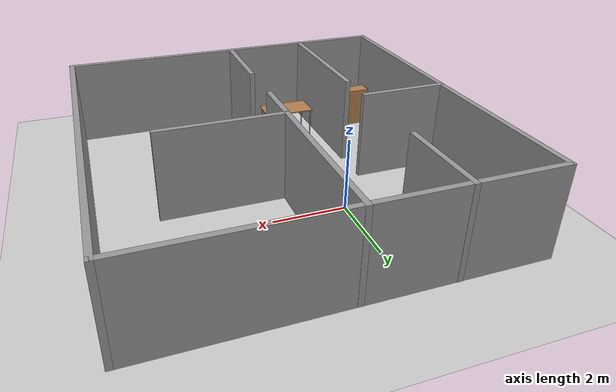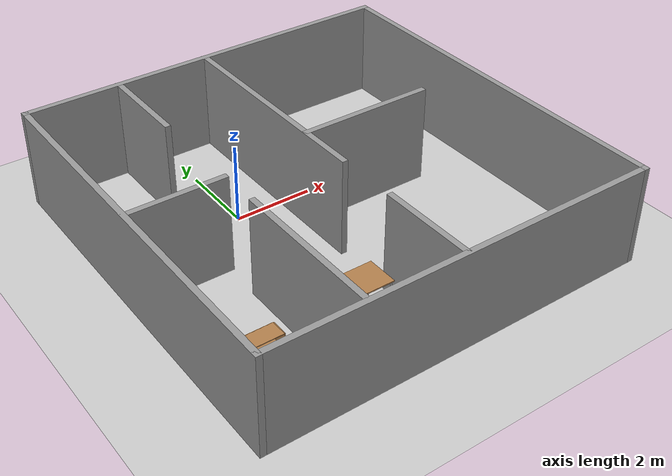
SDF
<sdf version="1.7">
 <world name="default">
  <light name="sun" type="directional">
   <pose>0 0 10 0 -0 0</pose>
   <diffuse>0.8 0.8 0.8 1</diffuse>
   <specular>0.2 0.2 0.2 1</specular>
   <attenuation>
    <range>1000</range>
    <constant>0.9</constant>
    <linear>0.01</linear>
    <quadratic>0.001</quadratic>
   </attenuation>
   <direction>-0.5 0.1 -0.9</direction>
   <spot><inner_angle>0</inner_angle><outer_angle>0</outer_angle><falloff>0</falloff></spot>
  </light>
  <model name="ground_plane">
   <static>1</static>
   <link name="link">
    <collision name="collision">
     <geometry><plane><normal>0 0 1</normal><size>100 100</size></plane></geometry>
     <surface>
      <contact><collide_bitmask>65535</collide_bitmask></contact>
      <friction><ode><mu>100</mu><mu2>50</mu2></ode></friction>
     </surface>
    </collision>
    <visual name="visual">
     <cast_shadows>0</cast_shadows>
     <geometry><plane><normal>0 0 1</normal><size>100 100</size></plane></geometry>
     <material>
      <script><uri>file://media/materials/scripts/gazebo.material</uri><name>Gazebo/Grey</name></script>
     </material>
    </visual>
   </link>
  </model>
  <gravity>0 0 -9.8</gravity>
  <magnetic_field>6e-06 2.3e-05 -4.2e-05</magnetic_field>
  <atmosphere type="adiabatic"/>
  <physics type="ode">
   <max_step_size>0.001</max_step_size>
   <real_time_factor>1</real_time_factor>
   <real_time_update_rate>1000</real_time_update_rate>
  </physics>
  <scene><ambient>0.4 0.4 0.4 1</ambient><background>0.7 0.7 0.7 1</background><shadows>1</shadows></scene>
  <spherical_coordinates>
   <surface_model>EARTH_WGS84</surface_model>
   <latitude_deg>0</latitude_deg>
   <longitude_deg>0</longitude_deg>
   <elevation>0</elevation>
   <heading_deg>0</heading_deg>
  </spherical_coordinates>
  <model name="room_with_walls_10x10">
   <pose>1.49895 -1.53115 0 0 -0 0</pose>
   <link name="Wall_1">
    <collision name="Wall_1_Collision">
     <geometry><box><size>10 0.15 2.5</size></box></geometry>
     <pose>0 0 1.25 0 -0 0</pose>
    </collision>
    <visual name="Wall_1_Visual">
     <pose>0 0 1.25 0 -0 0</pose>
     <geometry><box><size>10 0.15 2.5</size></box></geometry>
     <material>
      <script><uri>file://media/materials/scripts/gazebo.material</uri><name>Gazebo/Grey</name></script>
      <ambient>1 1 1 1</ambient>
     </material>
     <meta><layer>0</layer></meta>
    </visual>
    <pose>-0.119159 -4.92736 0 0 -0 0</pose>
   </link>
   <link name="Wall_11">
    <collision name="Wall_11_Collision">
     <geometry><box><size>2.5 0.15 2.5</size></box></geometry>
     <pose>0 0 1.25 0 -0 0</pose>
    </collision>
    <visual name="Wall_11_Visual">
     <pose>0 0 1.25 0 -0 0</pose>
     <geometry><box><size>2.5 0.15 2.5</size></box></geometry>
     <material>
      <script><uri>file://media/materials/scripts/gazebo.material</uri><name>Gazebo/Grey</name></script>
      <ambient>1 1 1 1</ambient>
     </material>
     <meta><layer>0</layer></meta>
    </visual>
    <pose>-2.64666 3.75236 0 0 -0 -1.5708</pose>
   </link>
   <link name="Wall_16">
    <collision name="Wall_16_Collision">
     <geometry><box><size>2.5 0.15 2.5</size></box></geometry>
     <pose>0 0 1.25 0 -0 0</pose>
    </collision>
    <visual name="Wall_16_Visual">
     <pose>0 0 1.25 0 -0 0</pose>
     <geometry><box><size>2.5 0.15 2.5</size></box></geometry>
     <material>
      <script><uri>file://media/materials/scripts/gazebo.material</uri><name>Gazebo/Grey</name></script>
      <ambient>1 1 1 1</ambient>
     </material>
     <meta><layer>0</layer></meta>
    </visual>
    <pose>-3.84066 0.028362 0 0 -0 0</pose>
   </link>
   <link name="Wall_18">
    <collision name="Wall_18_Collision">
     <geometry><box><size>4 0.15 2.5</size></box></geometry>
     <pose>0 0 1.25 0 -0 0</pose>
    </collision>
    <visual name="Wall_18_Visual">
     <pose>0 0 1.25 0 -0 0</pose>
     <geometry><box><size>4 0.15 2.5</size></box></geometry>
     <material>
      <script><uri>file://media/materials/scripts/gazebo.material</uri><name>Gazebo/Grey</name></script>
      <ambient>1 1 1 1</ambient>
     </material>
     <meta><layer>0</layer></meta>
    </visual>
    <pose>-2.63516 -2.99164 0 0 -0 1.5708</pose>
   </link>
   <link name="Wall_2">
    <collision name="Wall_2_Collision">
     <geometry><box><size>10 0.15 2.5</size></box></geometry>
     <pose>0 0 1.25 0 -0 0</pose>
    </collision>
    <visual name="Wall_2_Visual">
     <pose>0 0 1.25 0 -0 0</pose>
     <geometry><box><size>10 0.15 2.5</size></box></geometry>
     <material>
      <script><uri>file://media/materials/scripts/gazebo.material</uri><name>Gazebo/Grey</name></script>
      <ambient>1 1 1 1</ambient>
     </material>
     <meta><layer>0</layer></meta>
    </visual>
    <pose>4.80584 -0.002362 0 0 -0 1.5708</pose>
   </link>
   <link name="Wall_24">
    <collision name="Wall_24_Collision">
     <geometry><box><size>6 0.15 2.5</size></box></geometry>
     <pose>0 0 1.25 0 -0 0</pose>
    </collision>
    <visual name="Wall_24_Visual">
     <pose>0 0 1.25 0 -0 0</pose>
     <geometry><box><size>6 0.15 2.5</size></box></geometry>
     <material>
      <script><uri>file://media/materials/scripts/gazebo.material</uri><name>Gazebo/Grey</name></script>
      <ambient>1 1 1 1</ambient>
     </material>
     <meta><layer>0</layer></meta>
    </visual>
    <pose>-0.243157 2.00236 0 0 -0 -1.5708</pose>
   </link>
   <link name="Wall_28">
    <collision name="Wall_28_Collision">
     <geometry><box><size>2.5 0.15 2.5</size></box></geometry>
     <pose>0 0 1.25 0 -0 0</pose>
    </collision>
    <visual name="Wall_28_Visual">
     <pose>0 0 1.25 0 -0 0</pose>
     <geometry><box><size>2.5 0.15 2.5</size></box></geometry>
     <material>
      <script><uri>file://media/materials/scripts/gazebo.material</uri><name>Gazebo/Grey</name></script>
      <ambient>1 1 1 1</ambient>
     </material>
     <meta><layer>0</layer></meta>
    </visual>
    <pose>-0.220157 -3.74164 0 0 -0 1.5708</pose>
   </link>
   <link name="Wall_3">
    <collision name="Wall_3_Collision">
     <geometry><box><size>10 0.15 2.5</size></box></geometry>
     <pose>0 0 1.25 0 -0 0</pose>
    </collision>
    <visual name="Wall_3_Visual">
     <pose>0 0 1.25 0 -0 0</pose>
     <geometry><box><size>10 0.15 2.5</size></box></geometry>
     <material>
      <script><uri>file://media/materials/scripts/gazebo.material</uri><name>Gazebo/Grey</name></script>
      <ambient>1 1 1 1</ambient>
     </material>
     <meta><layer>0</layer></meta>
    </visual>
    <pose>-0.119159 4.92264 0 0 -0 3.14159</pose>
   </link>
   <link name="Wall_36">
    <collision name="Wall_36_Collision">
     <geometry><box><size>3.5 0.15 2.5</size></box></geometry>
     <pose>0 0 1.25 0 -0 0</pose>
    </collision>
    <visual name="Wall_36_Visual">
     <pose>0 0 1.25 0 -0 0</pose>
     <geometry><box><size>3.5 0.15 2.5</size></box></geometry>
     <material>
      <script><uri>file://media/materials/scripts/gazebo.material</uri><name>Gazebo/Grey</name></script>
      <ambient>1 1 1 1</ambient>
     </material>
     <meta><layer>0</layer></meta>
    </visual>
    <pose>1.44334 0.476862 0 0 -0 0</pose>
   </link>
   <link name="Wall_4">
    <collision name="Wall_4_Collision">
     <geometry><box><size>10 0.15 2.5</size></box></geometry>
     <pose>0 0 1.25 0 -0 0</pose>
    </collision>
    <visual name="Wall_4_Visual">
     <pose>0 0 1.25 0 -0 0</pose>
     <geometry><box><size>10 0.15 2.5</size></box></geometry>
     <material>
      <script><uri>file://media/materials/scripts/gazebo.material</uri><name>Gazebo/Grey</name></script>
      <ambient>1 1 1 1</ambient>
     </material>
     <meta><layer>0</layer></meta>
    </visual>
    <pose>-5.04416 -0.002362 0 0 -0 -1.5708</pose>
   </link>
   <static>1</static>
  </model>
  <model name="bookshelf">
   <static>1</static>
   <link name="link">
    <inertial><mass>1</mass></inertial>
    <collision name="back">
     <pose>0 0.005 0.6 0 -0 0</pose>
     <geometry><box><size>0.9 0.01 1.2</size></box></geometry>
    </collision>
    <visual name="visual1">
     <pose>0 0.005 0.6 0 -0 0</pose>
     <geometry><box><size>0.9 0.01 1.2</size></box></geometry>
     <material>
      <script><uri>file://media/materials/scripts/gazebo.material</uri><name>Gazebo/Wood</name></script>
     </material>
    </visual>
    <collision name="left_side">
     <pose>0.45 -0.195 0.6 0 -0 0</pose>
     <geometry><box><size>0.02 0.4 1.2</size></box></geometry>
    </collision>
    <visual name="visual2">
     <pose>0.45 -0.195 0.6 0 -0 0</pose>
     <geometry><box><size>0.02 0.4 1.2</size></box></geometry>
     <material>
      <script><uri>file://media/materials/scripts/gazebo.material</uri><name>Gazebo/Wood</name></script>
     </material>
    </visual>
    <collision name="right_side">
     <pose>-0.45 -0.195 0.6 0 -0 0</pose>
     <geometry><box><size>0.02 0.4 1.2</size></box></geometry>
    </collision>
    <visual name="visual3">
     <pose>-0.45 -0.195 0.6 0 -0 0</pose>
     <geometry><box><size>0.02 0.4 1.2</size></box></geometry>
     <material>
      <script><uri>file://media/materials/scripts/gazebo.material</uri><name>Gazebo/Wood</name></script>
     </material>
    </visual>
    <collision name="bottom">
     <pose>0 -0.195 0.03 0 -0 0</pose>
     <geometry><box><size>0.88 0.4 0.06</size></box></geometry>
    </collision>
    <visual name="visual4">
     <pose>0 -0.195 0.03 0 -0 0</pose>
     <geometry><box><size>0.88 0.4 0.06</size></box></geometry>
     <material>
      <script><uri>file://media/materials/scripts/gazebo.material</uri><name>Gazebo/Wood</name></script>
     </material>
    </visual>
    <collision name="top">
     <pose>0 -0.195 1.19 0 -0 0</pose>
     <geometry><box><size>0.88 0.4 0.02</size></box></geometry>
    </collision>
    <visual name="visual5">
     <pose>0 -0.195 1.19 0 -0 0</pose>
     <geometry><box><size>0.88 0.4 0.02</size></box></geometry>
     <material>
      <script><uri>file://media/materials/scripts/gazebo.material</uri><name>Gazebo/Wood</name></script>
     </material>
    </visual>
    <collision name="low_shelf">
     <pose>0 -0.195 0.43 0 -0 0</pose>
     <geometry><box><size>0.88 0.4 0.02</size></box></geometry>
    </collision>
    <visual name="visual6">
     <pose>0 -0.195 0.43 0 -0 0</pose>
     <geometry><box><size>0.88 0.4 0.02</size></box></geometry>
     <material>
      <script><uri>file://media/materials/scripts/gazebo.material</uri><name>Gazebo/Wood</name></script>
     </material>
    </visual>
    <collision name="high_shelf">
     <pose>0 -0.195 0.8 0 -0 0</pose>
     <geometry><box><size>0.88 0.4 0.02</size></box></geometry>
    </collision>
    <visual name="visual7">
     <pose>0 -0.195 0.8 0 -0 0</pose>
     <geometry><box><size>0.88 0.4 0.02</size></box></geometry>
     <material>
      <script><uri>file://media/materials/scripts/gazebo.material</uri><name>Gazebo/Wood</name></script>
     </material>
    </visual>
   </link>
   <pose>-2.53349 -4.71769 0 0 -0 0</pose>
  </model>
  <model name="table">
   <static>1</static>
   <link name="link">
    <collision name="surface">
     <pose>0 0 1 0 -0 0</pose>
     <geometry><box><size>1.5 0.8 0.03</size></box></geometry>
     <surface><friction><ode><mu>0.6</mu><mu2>0.6</mu2></ode></friction></surface>
    </collision>
    <visual name="visual1">
     <pose>0 0 1 0 -0 0</pose>
     <geometry><box><size>1.5 0.8 0.03</size></box></geometry>
     <material>
      <script><uri>file://media/materials/scripts/gazebo.material</uri><name>Gazebo/Wood</name></script>
     </material>
    </visual>
    <collision name="front_left_leg">
     <pose>0.68 0.38 0.5 0 -0 0</pose>
     <geometry><cylinder><radius>0.02</radius><length>1</length></cylinder></geometry>
    </collision>
    <visual name="front_left_leg">
     <pose>0.68 0.38 0.5 0 -0 0</pose>
     <geometry><cylinder><radius>0.02</radius><length>1</length></cylinder></geometry>
     <material>
      <script><uri>file://media/materials/scripts/gazebo.material</uri><name>Gazebo/Grey</name></script>
     </material>
    </visual>
    <collision name="front_right_leg">
     <pose>0.68 -0.38 0.5 0 -0 0</pose>
     <geometry><cylinder><radius>0.02</radius><length>1</length></cylinder></geometry>
    </collision>
    <visual name="front_right_leg">
     <pose>0.68 -0.38 0.5 0 -0 0</pose>
     <geometry><cylinder><radius>0.02</radius><length>1</length></cylinder></geometry>
     <material>
      <script><uri>file://media/materials/scripts/gazebo.material</uri><name>Gazebo/Grey</name></script>
     </material>
    </visual>
    <collision name="back_right_leg">
     <pose>-0.68 -0.38 0.5 0 -0 0</pose>
     <geometry><cylinder><radius>0.02</radius><length>1</length></cylinder></geometry>
    </collision>
    <visual name="back_right_leg">
     <pose>-0.68 -0.38 0.5 0 -0 0</pose>
     <geometry><cylinder><radius>0.02</radius><length>1</length></cylinder></geometry>
     <material>
      <script><uri>file://media/materials/scripts/gazebo.material</uri><name>Gazebo/Grey</name></script>
     </material>
    </visual>
    <collision name="back_left_leg">
     <pose>-0.68 0.38 0.5 0 -0 0</pose>
     <geometry><cylinder><radius>0.02</radius><length>1</length></cylinder></geometry>
    </collision>
    <visual name="back_left_leg">
     <pose>-0.68 0.38 0.5 0 -0 0</pose>
     <geometry><cylinder><radius>0.02</radius><length>1</length></cylinder></geometry>
     <material>
      <script><uri>file://media/materials/scripts/gazebo.material</uri><name>Gazebo/Grey</name></script>
     </material>
    </visual>
   </link>
   <pose>0.019878 -4.51721 0 0 -0 0</pose>
  </model>
 </world>
</sdf>
